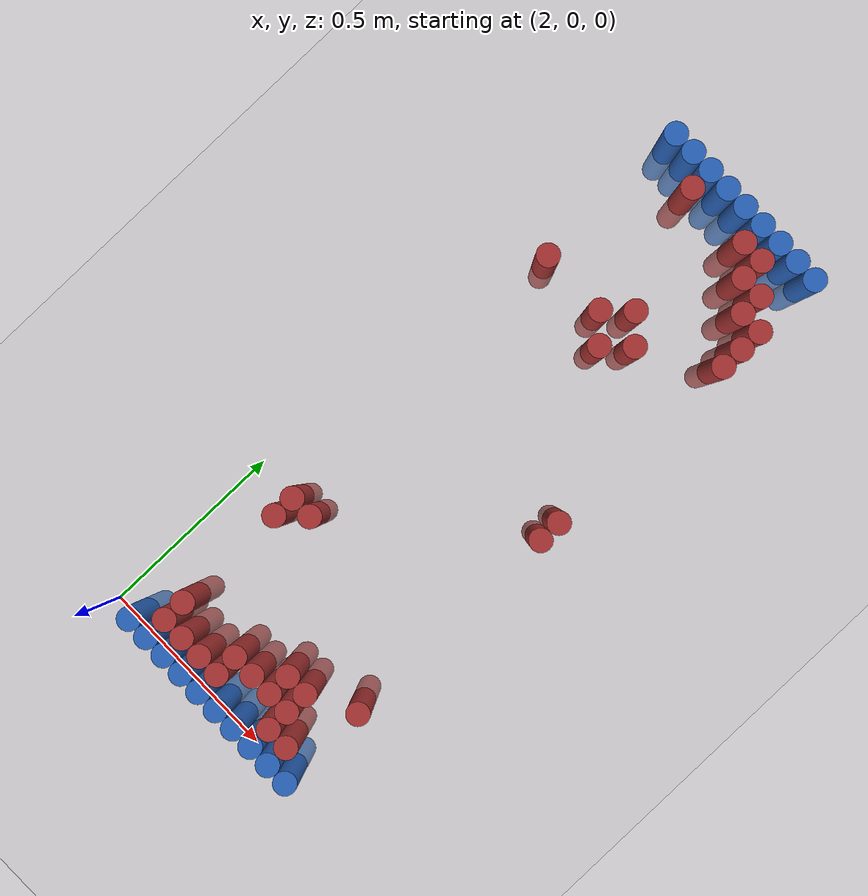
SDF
<sdf version="1.6">
 <world name="default">
  <model name="ground_plane">
   <static>1</static>
   <link name="link">
    <collision name="collision">
     <geometry><plane><normal>0 0 1</normal><size>100 100</size></plane></geometry>
     <surface><friction><ode><mu>100</mu><mu2>50</mu2></ode></friction></surface>
    </collision>
    <visual name="visual">
     <cast_shadows>0</cast_shadows>
     <geometry><plane><normal>0 0 1</normal><size>100 100</size></plane></geometry>
     <material>
      <script><uri>file://media/materials/scripts/gazebo.material</uri><name>Gazebo/Grey</name></script>
     </material>
    </visual>
   </link>
  </model>
  <model name="unit_cylinder_96">
   <static>1</static>
   <pose>2.130000 1.770000 0.000000 0.000000 0.000000 0.000000</pose>
   <link name="link">
    <inertial>
     <mass>1</mass>
     <inertia><ixx>0.145833</ixx><ixy>0</ixy><ixz>0</ixz><iyy>0.145833</iyy><iyz>0</iyz><izz>0.125</izz></inertia>
    </inertial>
    <collision name="collision">
     <geometry><cylinder><radius>0.030000</radius><length>0.5</length></cylinder></geometry>
    </collision>
    <visual name="visual">
     <geometry><cylinder><radius>0.030000</radius><length>0.5</length></cylinder></geometry>
     <material>
      <ambient>0.152000 0.379000 0.720000 1</ambient>
      <diffuse>0.152000 0.379000 0.720000 1</diffuse>
     </material>
     <material>
      <script><name>Gazebo/Grey</name><uri>file://media/materials/scripts/gazebo.material</uri></script>
     </material>
    </visual>
   </link>
  </model>
  <model name="unit_cylinder_97">
   <static>1</static>
   <pose>2.190000 1.770000 0.000000 0.000000 0.000000 0.000000</pose>
   <link name="link">
    <inertial>
     <mass>1</mass>
     <inertia><ixx>0.145833</ixx><ixy>0</ixy><ixz>0</ixz><iyy>0.145833</iyy><iyz>0</iyz><izz>0.125</izz></inertia>
    </inertial>
    <collision name="collision">
     <geometry><cylinder><radius>0.030000</radius><length>0.5</length></cylinder></geometry>
    </collision>
    <visual name="visual">
     <geometry><cylinder><radius>0.030000</radius><length>0.5</length></cylinder></geometry>
     <material>
      <ambient>0.152000 0.379000 0.720000 1</ambient>
      <diffuse>0.152000 0.379000 0.720000 1</diffuse>
     </material>
     <material>
      <script><name>Gazebo/Grey</name><uri>file://media/materials/scripts/gazebo.material</uri></script>
     </material>
    </visual>
   </link>
  </model>
  <model name="unit_cylinder_98">
   <static>1</static>
   <pose>2.250000 1.770000 0.000000 0.000000 0.000000 0.000000</pose>
   <link name="link">
    <inertial>
     <mass>1</mass>
     <inertia><ixx>0.145833</ixx><ixy>0</ixy><ixz>0</ixz><iyy>0.145833</iyy><iyz>0</iyz><izz>0.125</izz></inertia>
    </inertial>
    <collision name="collision">
     <geometry><cylinder><radius>0.030000</radius><length>0.5</length></cylinder></geometry>
    </collision>
    <visual name="visual">
     <geometry><cylinder><radius>0.030000</radius><length>0.5</length></cylinder></geometry>
     <material>
      <ambient>0.152000 0.379000 0.720000 1</ambient>
      <diffuse>0.152000 0.379000 0.720000 1</diffuse>
     </material>
     <material>
      <script><name>Gazebo/Grey</name><uri>file://media/materials/scripts/gazebo.material</uri></script>
     </material>
    </visual>
   </link>
  </model>
  <model name="unit_cylinder_99">
   <static>1</static>
   <pose>2.310000 1.770000 0.000000 0.000000 0.000000 0.000000</pose>
   <link name="link">
    <inertial>
     <mass>1</mass>
     <inertia><ixx>0.145833</ixx><ixy>0</ixy><ixz>0</ixz><iyy>0.145833</iyy><iyz>0</iyz><izz>0.125</izz></inertia>
    </inertial>
    <collision name="collision">
     <geometry><cylinder><radius>0.030000</radius><length>0.5</length></cylinder></geometry>
    </collision>
    <visual name="visual">
     <geometry><cylinder><radius>0.030000</radius><length>0.5</length></cylinder></geometry>
     <material>
      <ambient>0.152000 0.379000 0.720000 1</ambient>
      <diffuse>0.152000 0.379000 0.720000 1</diffuse>
     </material>
     <material>
      <script><name>Gazebo/Grey</name><uri>file://media/materials/scripts/gazebo.material</uri></script>
     </material>
    </visual>
   </link>
  </model>
  <model name="unit_cylinder_100">
   <static>1</static>
   <pose>2.370000 1.770000 0.000000 0.000000 0.000000 0.000000</pose>
   <link name="link">
    <inertial>
     <mass>1</mass>
     <inertia><ixx>0.145833</ixx><ixy>0</ixy><ixz>0</ixz><iyy>0.145833</iyy><iyz>0</iyz><izz>0.125</izz></inertia>
    </inertial>
    <collision name="collision">
     <geometry><cylinder><radius>0.030000</radius><length>0.5</length></cylinder></geometry>
    </collision>
    <visual name="visual">
     <geometry><cylinder><radius>0.030000</radius><length>0.5</length></cylinder></geometry>
     <material>
      <ambient>0.152000 0.379000 0.720000 1</ambient>
      <diffuse>0.152000 0.379000 0.720000 1</diffuse>
     </material>
     <material>
      <script><name>Gazebo/Grey</name><uri>file://media/materials/scripts/gazebo.material</uri></script>
     </material>
    </visual>
   </link>
  </model>
  <model name="unit_cylinder_101">
   <static>1</static>
   <pose>2.430000 1.770000 0.000000 0.000000 0.000000 0.000000</pose>
   <link name="link">
    <inertial>
     <mass>1</mass>
     <inertia><ixx>0.145833</ixx><ixy>0</ixy><ixz>0</ixz><iyy>0.145833</iyy><iyz>0</iyz><izz>0.125</izz></inertia>
    </inertial>
    <collision name="collision">
     <geometry><cylinder><radius>0.030000</radius><length>0.5</length></cylinder></geometry>
    </collision>
    <visual name="visual">
     <geometry><cylinder><radius>0.030000</radius><length>0.5</length></cylinder></geometry>
     <material>
      <ambient>0.152000 0.379000 0.720000 1</ambient>
      <diffuse>0.152000 0.379000 0.720000 1</diffuse>
     </material>
     <material>
      <script><name>Gazebo/Grey</name><uri>file://media/materials/scripts/gazebo.material</uri></script>
     </material>
    </visual>
   </link>
  </model>
  <model name="unit_cylinder_102">
   <static>1</static>
   <pose>2.490000 1.770000 0.000000 0.000000 0.000000 0.000000</pose>
   <link name="link">
    <inertial>
     <mass>1</mass>
     <inertia><ixx>0.145833</ixx><ixy>0</ixy><ixz>0</ixz><iyy>0.145833</iyy><iyz>0</iyz><izz>0.125</izz></inertia>
    </inertial>
    <collision name="collision">
     <geometry><cylinder><radius>0.030000</radius><length>0.5</length></cylinder></geometry>
    </collision>
    <visual name="visual">
     <geometry><cylinder><radius>0.030000</radius><length>0.5</length></cylinder></geometry>
     <material>
      <ambient>0.152000 0.379000 0.720000 1</ambient>
      <diffuse>0.152000 0.379000 0.720000 1</diffuse>
     </material>
     <material>
      <script><name>Gazebo/Grey</name><uri>file://media/materials/scripts/gazebo.material</uri></script>
     </material>
    </visual>
   </link>
  </model>
  <model name="unit_cylinder_103">
   <static>1</static>
   <pose>2.550000 1.770000 0.000000 0.000000 0.000000 0.000000</pose>
   <link name="link">
    <inertial>
     <mass>1</mass>
     <inertia><ixx>0.145833</ixx><ixy>0</ixy><ixz>0</ixz><iyy>0.145833</iyy><iyz>0</iyz><izz>0.125</izz></inertia>
    </inertial>
    <collision name="collision">
     <geometry><cylinder><radius>0.030000</radius><length>0.5</length></cylinder></geometry>
    </collision>
    <visual name="visual">
     <geometry><cylinder><radius>0.030000</radius><length>0.5</length></cylinder></geometry>
     <material>
      <ambient>0.152000 0.379000 0.720000 1</ambient>
      <diffuse>0.152000 0.379000 0.720000 1</diffuse>
     </material>
     <material>
      <script><name>Gazebo/Grey</name><uri>file://media/materials/scripts/gazebo.material</uri></script>
     </material>
    </visual>
   </link>
  </model>
  <model name="unit_cylinder_104">
   <static>1</static>
   <pose>2.610000 1.770000 0.000000 0.000000 0.000000 0.000000</pose>
   <link name="link">
    <inertial>
     <mass>1</mass>
     <inertia><ixx>0.145833</ixx><ixy>0</ixy><ixz>0</ixz><iyy>0.145833</iyy><iyz>0</iyz><izz>0.125</izz></inertia>
    </inertial>
    <collision name="collision">
     <geometry><cylinder><radius>0.030000</radius><length>0.5</length></cylinder></geometry>
    </collision>
    <visual name="visual">
     <geometry><cylinder><radius>0.030000</radius><length>0.5</length></cylinder></geometry>
     <material>
      <ambient>0.152000 0.379000 0.720000 1</ambient>
      <diffuse>0.152000 0.379000 0.720000 1</diffuse>
     </material>
     <material>
      <script><name>Gazebo/Grey</name><uri>file://media/materials/scripts/gazebo.material</uri></script>
     </material>
    </visual>
   </link>
  </model>
  <model name="unit_cylinder_126">
   <static>1</static>
   <pose>2.250000 1.710000 0.000000 0.000000 0.000000 0.000000</pose>
   <link name="link">
    <inertial>
     <mass>1</mass>
     <inertia><ixx>0.145833</ixx><ixy>0</ixy><ixz>0</ixz><iyy>0.145833</iyy><iyz>0</iyz><izz>0.125</izz></inertia>
    </inertial>
    <collision name="collision">
     <geometry><cylinder><radius>0.030000</radius><length>0.5</length></cylinder></geometry>
    </collision>
    <visual name="visual">
     <geometry><cylinder><radius>0.030000</radius><length>0.5</length></cylinder></geometry>
     <material>
      <ambient>0.648000 0.192000 0.192000 1</ambient>
      <diffuse>0.648000 0.192000 0.192000 1</diffuse>
     </material>
     <material>
      <script><name>Gazebo/Grey</name><uri>file://media/materials/scripts/gazebo.material</uri></script>
     </material>
    </visual>
   </link>
  </model>
  <model name="unit_cylinder_127">
   <static>1</static>
   <pose>2.430000 1.710000 0.000000 0.000000 0.000000 0.000000</pose>
   <link name="link">
    <inertial>
     <mass>1</mass>
     <inertia><ixx>0.145833</ixx><ixy>0</ixy><ixz>0</ixz><iyy>0.145833</iyy><iyz>0</iyz><izz>0.125</izz></inertia>
    </inertial>
    <collision name="collision">
     <geometry><cylinder><radius>0.030000</radius><length>0.5</length></cylinder></geometry>
    </collision>
    <visual name="visual">
     <geometry><cylinder><radius>0.030000</radius><length>0.5</length></cylinder></geometry>
     <material>
      <ambient>0.648000 0.192000 0.192000 1</ambient>
      <diffuse>0.648000 0.192000 0.192000 1</diffuse>
     </material>
     <material>
      <script><name>Gazebo/Grey</name><uri>file://media/materials/scripts/gazebo.material</uri></script>
     </material>
    </visual>
   </link>
  </model>
  <model name="unit_cylinder_128">
   <static>1</static>
   <pose>2.490000 1.710000 0.000000 0.000000 0.000000 0.000000</pose>
   <link name="link">
    <inertial>
     <mass>1</mass>
     <inertia><ixx>0.145833</ixx><ixy>0</ixy><ixz>0</ixz><iyy>0.145833</iyy><iyz>0</iyz><izz>0.125</izz></inertia>
    </inertial>
    <collision name="collision">
     <geometry><cylinder><radius>0.030000</radius><length>0.5</length></cylinder></geometry>
    </collision>
    <visual name="visual">
     <geometry><cylinder><radius>0.030000</radius><length>0.5</length></cylinder></geometry>
     <material>
      <ambient>0.648000 0.192000 0.192000 1</ambient>
      <diffuse>0.648000 0.192000 0.192000 1</diffuse>
     </material>
     <material>
      <script><name>Gazebo/Grey</name><uri>file://media/materials/scripts/gazebo.material</uri></script>
     </material>
    </visual>
   </link>
  </model>
  <model name="unit_cylinder_136">
   <static>1</static>
   <pose>2.490000 1.650000 0.000000 0.000000 0.000000 0.000000</pose>
   <link name="link">
    <inertial>
     <mass>1</mass>
     <inertia><ixx>0.145833</ixx><ixy>0</ixy><ixz>0</ixz><iyy>0.145833</iyy><iyz>0</iyz><izz>0.125</izz></inertia>
    </inertial>
    <collision name="collision">
     <geometry><cylinder><radius>0.030000</radius><length>0.5</length></cylinder></geometry>
    </collision>
    <visual name="visual">
     <geometry><cylinder><radius>0.030000</radius><length>0.5</length></cylinder></geometry>
     <material>
      <ambient>0.648000 0.192000 0.192000 1</ambient>
      <diffuse>0.648000 0.192000 0.192000 1</diffuse>
     </material>
     <material>
      <script><name>Gazebo/Grey</name><uri>file://media/materials/scripts/gazebo.material</uri></script>
     </material>
    </visual>
   </link>
  </model>
  <model name="unit_cylinder_137">
   <static>1</static>
   <pose>2.550000 1.650000 0.000000 0.000000 0.000000 0.000000</pose>
   <link name="link">
    <inertial>
     <mass>1</mass>
     <inertia><ixx>0.145833</ixx><ixy>0</ixy><ixz>0</ixz><iyy>0.145833</iyy><iyz>0</iyz><izz>0.125</izz></inertia>
    </inertial>
    <collision name="collision">
     <geometry><cylinder><radius>0.030000</radius><length>0.5</length></cylinder></geometry>
    </collision>
    <visual name="visual">
     <geometry><cylinder><radius>0.030000</radius><length>0.5</length></cylinder></geometry>
     <material>
      <ambient>0.648000 0.192000 0.192000 1</ambient>
      <diffuse>0.648000 0.192000 0.192000 1</diffuse>
     </material>
     <material>
      <script><name>Gazebo/Grey</name><uri>file://media/materials/scripts/gazebo.material</uri></script>
     </material>
    </visual>
   </link>
  </model>
  <model name="unit_cylinder_141">
   <static>1</static>
   <pose>2.550000 1.590000 0.000000 0.000000 0.000000 0.000000</pose>
   <link name="link">
    <inertial>
     <mass>1</mass>
     <inertia><ixx>0.145833</ixx><ixy>0</ixy><ixz>0</ixz><iyy>0.145833</iyy><iyz>0</iyz><izz>0.125</izz></inertia>
    </inertial>
    <collision name="collision">
     <geometry><cylinder><radius>0.030000</radius><length>0.5</length></cylinder></geometry>
    </collision>
    <visual name="visual">
     <geometry><cylinder><radius>0.030000</radius><length>0.5</length></cylinder></geometry>
     <material>
      <ambient>0.648000 0.192000 0.192000 1</ambient>
      <diffuse>0.648000 0.192000 0.192000 1</diffuse>
     </material>
     <material>
      <script><name>Gazebo/Grey</name><uri>file://media/materials/scripts/gazebo.material</uri></script>
     </material>
    </visual>
   </link>
  </model>
  <model name="unit_cylinder_142">
   <static>1</static>
   <pose>2.610000 1.590000 0.000000 0.000000 0.000000 0.000000</pose>
   <link name="link">
    <inertial>
     <mass>1</mass>
     <inertia><ixx>0.145833</ixx><ixy>0</ixy><ixz>0</ixz><iyy>0.145833</iyy><iyz>0</iyz><izz>0.125</izz></inertia>
    </inertial>
    <collision name="collision">
     <geometry><cylinder><radius>0.030000</radius><length>0.5</length></cylinder></geometry>
    </collision>
    <visual name="visual">
     <geometry><cylinder><radius>0.030000</radius><length>0.5</length></cylinder></geometry>
     <material>
      <ambient>0.648000 0.192000 0.192000 1</ambient>
      <diffuse>0.648000 0.192000 0.192000 1</diffuse>
     </material>
     <material>
      <script><name>Gazebo/Grey</name><uri>file://media/materials/scripts/gazebo.material</uri></script>
     </material>
    </visual>
   </link>
  </model>
  <model name="unit_cylinder_147">
   <static>1</static>
   <pose>2.610000 1.530000 0.000000 0.000000 0.000000 0.000000</pose>
   <link name="link">
    <inertial>
     <mass>1</mass>
     <inertia><ixx>0.145833</ixx><ixy>0</ixy><ixz>0</ixz><iyy>0.145833</iyy><iyz>0</iyz><izz>0.125</izz></inertia>
    </inertial>
    <collision name="collision">
     <geometry><cylinder><radius>0.030000</radius><length>0.5</length></cylinder></geometry>
    </collision>
    <visual name="visual">
     <geometry><cylinder><radius>0.030000</radius><length>0.5</length></cylinder></geometry>
     <material>
      <ambient>0.648000 0.192000 0.192000 1</ambient>
      <diffuse>0.648000 0.192000 0.192000 1</diffuse>
     </material>
     <material>
      <script><name>Gazebo/Grey</name><uri>file://media/materials/scripts/gazebo.material</uri></script>
     </material>
    </visual>
   </link>
  </model>
  <model name="unit_cylinder_155">
   <static>1</static>
   <pose>2.610000 1.470000 0.000000 0.000000 0.000000 0.000000</pose>
   <link name="link">
    <inertial>
     <mass>1</mass>
     <inertia><ixx>0.145833</ixx><ixy>0</ixy><ixz>0</ixz><iyy>0.145833</iyy><iyz>0</iyz><izz>0.125</izz></inertia>
    </inertial>
    <collision name="collision">
     <geometry><cylinder><radius>0.030000</radius><length>0.5</length></cylinder></geometry>
    </collision>
    <visual name="visual">
     <geometry><cylinder><radius>0.030000</radius><length>0.5</length></cylinder></geometry>
     <material>
      <ambient>0.648000 0.192000 0.192000 1</ambient>
      <diffuse>0.648000 0.192000 0.192000 1</diffuse>
     </material>
     <material>
      <script><name>Gazebo/Grey</name><uri>file://media/materials/scripts/gazebo.material</uri></script>
     </material>
    </visual>
   </link>
  </model>
  <model name="unit_cylinder_162">
   <static>1</static>
   <pose>2.370000 1.410000 0.000000 0.000000 0.000000 0.000000</pose>
   <link name="link">
    <inertial>
     <mass>1</mass>
     <inertia><ixx>0.145833</ixx><ixy>0</ixy><ixz>0</ixz><iyy>0.145833</iyy><iyz>0</iyz><izz>0.125</izz></inertia>
    </inertial>
    <collision name="collision">
     <geometry><cylinder><radius>0.030000</radius><length>0.5</length></cylinder></geometry>
    </collision>
    <visual name="visual">
     <geometry><cylinder><radius>0.030000</radius><length>0.5</length></cylinder></geometry>
     <material>
      <ambient>0.648000 0.192000 0.192000 1</ambient>
      <diffuse>0.648000 0.192000 0.192000 1</diffuse>
     </material>
     <material>
      <script><name>Gazebo/Grey</name><uri>file://media/materials/scripts/gazebo.material</uri></script>
     </material>
    </visual>
   </link>
  </model>
  <model name="unit_cylinder_167">
   <static>1</static>
   <pose>2.130000 1.350000 0.000000 0.000000 0.000000 0.000000</pose>
   <link name="link">
    <inertial>
     <mass>1</mass>
     <inertia><ixx>0.145833</ixx><ixy>0</ixy><ixz>0</ixz><iyy>0.145833</iyy><iyz>0</iyz><izz>0.125</izz></inertia>
    </inertial>
    <collision name="collision">
     <geometry><cylinder><radius>0.030000</radius><length>0.5</length></cylinder></geometry>
    </collision>
    <visual name="visual">
     <geometry><cylinder><radius>0.030000</radius><length>0.5</length></cylinder></geometry>
     <material>
      <ambient>0.648000 0.192000 0.192000 1</ambient>
      <diffuse>0.648000 0.192000 0.192000 1</diffuse>
     </material>
     <material>
      <script><name>Gazebo/Grey</name><uri>file://media/materials/scripts/gazebo.material</uri></script>
     </material>
    </visual>
   </link>
  </model>
  <model name="unit_cylinder_168">
   <static>1</static>
   <pose>2.310000 1.350000 0.000000 0.000000 0.000000 0.000000</pose>
   <link name="link">
    <inertial>
     <mass>1</mass>
     <inertia><ixx>0.145833</ixx><ixy>0</ixy><ixz>0</ixz><iyy>0.145833</iyy><iyz>0</iyz><izz>0.125</izz></inertia>
    </inertial>
    <collision name="collision">
     <geometry><cylinder><radius>0.030000</radius><length>0.5</length></cylinder></geometry>
    </collision>
    <visual name="visual">
     <geometry><cylinder><radius>0.030000</radius><length>0.5</length></cylinder></geometry>
     <material>
      <ambient>0.648000 0.192000 0.192000 1</ambient>
      <diffuse>0.648000 0.192000 0.192000 1</diffuse>
     </material>
     <material>
      <script><name>Gazebo/Grey</name><uri>file://media/materials/scripts/gazebo.material</uri></script>
     </material>
    </visual>
   </link>
  </model>
  <model name="unit_cylinder_169">
   <static>1</static>
   <pose>2.430000 1.350000 0.000000 0.000000 0.000000 0.000000</pose>
   <link name="link">
    <inertial>
     <mass>1</mass>
     <inertia><ixx>0.145833</ixx><ixy>0</ixy><ixz>0</ixz><iyy>0.145833</iyy><iyz>0</iyz><izz>0.125</izz></inertia>
    </inertial>
    <collision name="collision">
     <geometry><cylinder><radius>0.030000</radius><length>0.5</length></cylinder></geometry>
    </collision>
    <visual name="visual">
     <geometry><cylinder><radius>0.030000</radius><length>0.5</length></cylinder></geometry>
     <material>
      <ambient>0.648000 0.192000 0.192000 1</ambient>
      <diffuse>0.648000 0.192000 0.192000 1</diffuse>
     </material>
     <material>
      <script><name>Gazebo/Grey</name><uri>file://media/materials/scripts/gazebo.material</uri></script>
     </material>
    </visual>
   </link>
  </model>
  <model name="unit_cylinder_172">
   <static>1</static>
   <pose>2.370000 1.290000 0.000000 0.000000 0.000000 0.000000</pose>
   <link name="link">
    <inertial>
     <mass>1</mass>
     <inertia><ixx>0.145833</ixx><ixy>0</ixy><ixz>0</ixz><iyy>0.145833</iyy><iyz>0</iyz><izz>0.125</izz></inertia>
    </inertial>
    <collision name="collision">
     <geometry><cylinder><radius>0.030000</radius><length>0.5</length></cylinder></geometry>
    </collision>
    <visual name="visual">
     <geometry><cylinder><radius>0.030000</radius><length>0.5</length></cylinder></geometry>
     <material>
      <ambient>0.648000 0.192000 0.192000 1</ambient>
      <diffuse>0.648000 0.192000 0.192000 1</diffuse>
     </material>
     <material>
      <script><name>Gazebo/Grey</name><uri>file://media/materials/scripts/gazebo.material</uri></script>
     </material>
    </visual>
   </link>
  </model>
  <model name="unit_cylinder_194">
   <static>1</static>
   <pose>2.610000 0.930000 0.000000 0.000000 0.000000 0.000000</pose>
   <link name="link">
    <inertial>
     <mass>1</mass>
     <inertia><ixx>0.145833</ixx><ixy>0</ixy><ixz>0</ixz><iyy>0.145833</iyy><iyz>0</iyz><izz>0.125</izz></inertia>
    </inertial>
    <collision name="collision">
     <geometry><cylinder><radius>0.030000</radius><length>0.5</length></cylinder></geometry>
    </collision>
    <visual name="visual">
     <geometry><cylinder><radius>0.030000</radius><length>0.5</length></cylinder></geometry>
     <material>
      <ambient>0.648000 0.192000 0.192000 1</ambient>
      <diffuse>0.648000 0.192000 0.192000 1</diffuse>
     </material>
     <material>
      <script><name>Gazebo/Grey</name><uri>file://media/materials/scripts/gazebo.material</uri></script>
     </material>
    </visual>
   </link>
  </model>
  <model name="unit_cylinder_203">
   <static>1</static>
   <pose>2.610000 0.870000 0.000000 0.000000 0.000000 0.000000</pose>
   <link name="link">
    <inertial>
     <mass>1</mass>
     <inertia><ixx>0.145833</ixx><ixy>0</ixy><ixz>0</ixz><iyy>0.145833</iyy><iyz>0</iyz><izz>0.125</izz></inertia>
    </inertial>
    <collision name="collision">
     <geometry><cylinder><radius>0.030000</radius><length>0.5</length></cylinder></geometry>
    </collision>
    <visual name="visual">
     <geometry><cylinder><radius>0.030000</radius><length>0.5</length></cylinder></geometry>
     <material>
      <ambient>0.648000 0.192000 0.192000 1</ambient>
      <diffuse>0.648000 0.192000 0.192000 1</diffuse>
     </material>
     <material>
      <script><name>Gazebo/Grey</name><uri>file://media/materials/scripts/gazebo.material</uri></script>
     </material>
    </visual>
   </link>
  </model>
  <model name="unit_cylinder_233">
   <static>1</static>
   <pose>2.130000 0.510000 0.000000 0.000000 0.000000 0.000000</pose>
   <link name="link">
    <inertial>
     <mass>1</mass>
     <inertia><ixx>0.145833</ixx><ixy>0</ixy><ixz>0</ixz><iyy>0.145833</iyy><iyz>0</iyz><izz>0.125</izz></inertia>
    </inertial>
    <collision name="collision">
     <geometry><cylinder><radius>0.030000</radius><length>0.5</length></cylinder></geometry>
    </collision>
    <visual name="visual">
     <geometry><cylinder><radius>0.030000</radius><length>0.5</length></cylinder></geometry>
     <material>
      <ambient>0.648000 0.192000 0.192000 1</ambient>
      <diffuse>0.648000 0.192000 0.192000 1</diffuse>
     </material>
     <material>
      <script><name>Gazebo/Grey</name><uri>file://media/materials/scripts/gazebo.material</uri></script>
     </material>
    </visual>
   </link>
  </model>
  <model name="unit_cylinder_234">
   <static>1</static>
   <pose>2.190000 0.510000 0.000000 0.000000 0.000000 0.000000</pose>
   <link name="link">
    <inertial>
     <mass>1</mass>
     <inertia><ixx>0.145833</ixx><ixy>0</ixy><ixz>0</ixz><iyy>0.145833</iyy><iyz>0</iyz><izz>0.125</izz></inertia>
    </inertial>
    <collision name="collision">
     <geometry><cylinder><radius>0.030000</radius><length>0.5</length></cylinder></geometry>
    </collision>
    <visual name="visual">
     <geometry><cylinder><radius>0.030000</radius><length>0.5</length></cylinder></geometry>
     <material>
      <ambient>0.648000 0.192000 0.192000 1</ambient>
      <diffuse>0.648000 0.192000 0.192000 1</diffuse>
     </material>
     <material>
      <script><name>Gazebo/Grey</name><uri>file://media/materials/scripts/gazebo.material</uri></script>
     </material>
    </visual>
   </link>
  </model>
  <model name="unit_cylinder_235">
   <static>1</static>
   <pose>2.130000 0.450000 0.000000 0.000000 0.000000 0.000000</pose>
   <link name="link">
    <inertial>
     <mass>1</mass>
     <inertia><ixx>0.145833</ixx><ixy>0</ixy><ixz>0</ixz><iyy>0.145833</iyy><iyz>0</iyz><izz>0.125</izz></inertia>
    </inertial>
    <collision name="collision">
     <geometry><cylinder><radius>0.030000</radius><length>0.5</length></cylinder></geometry>
    </collision>
    <visual name="visual">
     <geometry><cylinder><radius>0.030000</radius><length>0.5</length></cylinder></geometry>
     <material>
      <ambient>0.648000 0.192000 0.192000 1</ambient>
      <diffuse>0.648000 0.192000 0.192000 1</diffuse>
     </material>
     <material>
      <script><name>Gazebo/Grey</name><uri>file://media/materials/scripts/gazebo.material</uri></script>
     </material>
    </visual>
   </link>
  </model>
  <model name="unit_cylinder_240">
   <static>1</static>
   <pose>2.610000 0.270000 0.000000 0.000000 0.000000 0.000000</pose>
   <link name="link">
    <inertial>
     <mass>1</mass>
     <inertia><ixx>0.145833</ixx><ixy>0</ixy><ixz>0</ixz><iyy>0.145833</iyy><iyz>0</iyz><izz>0.125</izz></inertia>
    </inertial>
    <collision name="collision">
     <geometry><cylinder><radius>0.030000</radius><length>0.5</length></cylinder></geometry>
    </collision>
    <visual name="visual">
     <geometry><cylinder><radius>0.030000</radius><length>0.5</length></cylinder></geometry>
     <material>
      <ambient>0.648000 0.192000 0.192000 1</ambient>
      <diffuse>0.648000 0.192000 0.192000 1</diffuse>
     </material>
     <material>
      <script><name>Gazebo/Grey</name><uri>file://media/materials/scripts/gazebo.material</uri></script>
     </material>
    </visual>
   </link>
  </model>
  <model name="unit_cylinder_249">
   <static>1</static>
   <pose>2.430000 0.210000 0.000000 0.000000 0.000000 0.000000</pose>
   <link name="link">
    <inertial>
     <mass>1</mass>
     <inertia><ixx>0.145833</ixx><ixy>0</ixy><ixz>0</ixz><iyy>0.145833</iyy><iyz>0</iyz><izz>0.125</izz></inertia>
    </inertial>
    <collision name="collision">
     <geometry><cylinder><radius>0.030000</radius><length>0.5</length></cylinder></geometry>
    </collision>
    <visual name="visual">
     <geometry><cylinder><radius>0.030000</radius><length>0.5</length></cylinder></geometry>
     <material>
      <ambient>0.648000 0.192000 0.192000 1</ambient>
      <diffuse>0.648000 0.192000 0.192000 1</diffuse>
     </material>
     <material>
      <script><name>Gazebo/Grey</name><uri>file://media/materials/scripts/gazebo.material</uri></script>
     </material>
    </visual>
   </link>
  </model>
  <model name="unit_cylinder_250">
   <static>1</static>
   <pose>2.490000 0.210000 0.000000 0.000000 0.000000 0.000000</pose>
   <link name="link">
    <inertial>
     <mass>1</mass>
     <inertia><ixx>0.145833</ixx><ixy>0</ixy><ixz>0</ixz><iyy>0.145833</iyy><iyz>0</iyz><izz>0.125</izz></inertia>
    </inertial>
    <collision name="collision">
     <geometry><cylinder><radius>0.030000</radius><length>0.5</length></cylinder></geometry>
    </collision>
    <visual name="visual">
     <geometry><cylinder><radius>0.030000</radius><length>0.5</length></cylinder></geometry>
     <material>
      <ambient>0.648000 0.192000 0.192000 1</ambient>
      <diffuse>0.648000 0.192000 0.192000 1</diffuse>
     </material>
     <material>
      <script><name>Gazebo/Grey</name><uri>file://media/materials/scripts/gazebo.material</uri></script>
     </material>
    </visual>
   </link>
  </model>
  <model name="unit_cylinder_255">
   <static>1</static>
   <pose>2.130000 0.150000 0.000000 0.000000 0.000000 0.000000</pose>
   <link name="link">
    <inertial>
     <mass>1</mass>
     <inertia><ixx>0.145833</ixx><ixy>0</ixy><ixz>0</ixz><iyy>0.145833</iyy><iyz>0</iyz><izz>0.125</izz></inertia>
    </inertial>
    <collision name="collision">
     <geometry><cylinder><radius>0.030000</radius><length>0.5</length></cylinder></geometry>
    </collision>
    <visual name="visual">
     <geometry><cylinder><radius>0.030000</radius><length>0.5</length></cylinder></geometry>
     <material>
      <ambient>0.648000 0.192000 0.192000 1</ambient>
      <diffuse>0.648000 0.192000 0.192000 1</diffuse>
     </material>
     <material>
      <script><name>Gazebo/Grey</name><uri>file://media/materials/scripts/gazebo.material</uri></script>
     </material>
    </visual>
   </link>
  </model>
  <model name="unit_cylinder_256">
   <static>1</static>
   <pose>2.310000 0.150000 0.000000 0.000000 0.000000 0.000000</pose>
   <link name="link">
    <inertial>
     <mass>1</mass>
     <inertia><ixx>0.145833</ixx><ixy>0</ixy><ixz>0</ixz><iyy>0.145833</iyy><iyz>0</iyz><izz>0.125</izz></inertia>
    </inertial>
    <collision name="collision">
     <geometry><cylinder><radius>0.030000</radius><length>0.5</length></cylinder></geometry>
    </collision>
    <visual name="visual">
     <geometry><cylinder><radius>0.030000</radius><length>0.5</length></cylinder></geometry>
     <material>
      <ambient>0.648000 0.192000 0.192000 1</ambient>
      <diffuse>0.648000 0.192000 0.192000 1</diffuse>
     </material>
     <material>
      <script><name>Gazebo/Grey</name><uri>file://media/materials/scripts/gazebo.material</uri></script>
     </material>
    </visual>
   </link>
  </model>
  <model name="unit_cylinder_257">
   <static>1</static>
   <pose>2.370000 0.150000 0.000000 0.000000 0.000000 0.000000</pose>
   <link name="link">
    <inertial>
     <mass>1</mass>
     <inertia><ixx>0.145833</ixx><ixy>0</ixy><ixz>0</ixz><iyy>0.145833</iyy><iyz>0</iyz><izz>0.125</izz></inertia>
    </inertial>
    <collision name="collision">
     <geometry><cylinder><radius>0.030000</radius><length>0.5</length></cylinder></geometry>
    </collision>
    <visual name="visual">
     <geometry><cylinder><radius>0.030000</radius><length>0.5</length></cylinder></geometry>
     <material>
      <ambient>0.648000 0.192000 0.192000 1</ambient>
      <diffuse>0.648000 0.192000 0.192000 1</diffuse>
     </material>
     <material>
      <script><name>Gazebo/Grey</name><uri>file://media/materials/scripts/gazebo.material</uri></script>
     </material>
    </visual>
   </link>
  </model>
  <model name="unit_cylinder_258">
   <static>1</static>
   <pose>2.430000 0.150000 0.000000 0.000000 0.000000 0.000000</pose>
   <link name="link">
    <inertial>
     <mass>1</mass>
     <inertia><ixx>0.145833</ixx><ixy>0</ixy><ixz>0</ixz><iyy>0.145833</iyy><iyz>0</iyz><izz>0.125</izz></inertia>
    </inertial>
    <collision name="collision">
     <geometry><cylinder><radius>0.030000</radius><length>0.5</length></cylinder></geometry>
    </collision>
    <visual name="visual">
     <geometry><cylinder><radius>0.030000</radius><length>0.5</length></cylinder></geometry>
     <material>
      <ambient>0.648000 0.192000 0.192000 1</ambient>
      <diffuse>0.648000 0.192000 0.192000 1</diffuse>
     </material>
     <material>
      <script><name>Gazebo/Grey</name><uri>file://media/materials/scripts/gazebo.material</uri></script>
     </material>
    </visual>
   </link>
  </model>
  <model name="unit_cylinder_259">
   <static>1</static>
   <pose>2.490000 0.150000 0.000000 0.000000 0.000000 0.000000</pose>
   <link name="link">
    <inertial>
     <mass>1</mass>
     <inertia><ixx>0.145833</ixx><ixy>0</ixy><ixz>0</ixz><iyy>0.145833</iyy><iyz>0</iyz><izz>0.125</izz></inertia>
    </inertial>
    <collision name="collision">
     <geometry><cylinder><radius>0.030000</radius><length>0.5</length></cylinder></geometry>
    </collision>
    <visual name="visual">
     <geometry><cylinder><radius>0.030000</radius><length>0.5</length></cylinder></geometry>
     <material>
      <ambient>0.648000 0.192000 0.192000 1</ambient>
      <diffuse>0.648000 0.192000 0.192000 1</diffuse>
     </material>
     <material>
      <script><name>Gazebo/Grey</name><uri>file://media/materials/scripts/gazebo.material</uri></script>
     </material>
    </visual>
   </link>
  </model>
  <model name="unit_cylinder_264">
   <static>1</static>
   <pose>2.130000 0.090000 0.000000 0.000000 0.000000 0.000000</pose>
   <link name="link">
    <inertial>
     <mass>1</mass>
     <inertia><ixx>0.145833</ixx><ixy>0</ixy><ixz>0</ixz><iyy>0.145833</iyy><iyz>0</iyz><izz>0.125</izz></inertia>
    </inertial>
    <collision name="collision">
     <geometry><cylinder><radius>0.030000</radius><length>0.5</length></cylinder></geometry>
    </collision>
    <visual name="visual">
     <geometry><cylinder><radius>0.030000</radius><length>0.5</length></cylinder></geometry>
     <material>
      <ambient>0.648000 0.192000 0.192000 1</ambient>
      <diffuse>0.648000 0.192000 0.192000 1</diffuse>
     </material>
     <material>
      <script><name>Gazebo/Grey</name><uri>file://media/materials/scripts/gazebo.material</uri></script>
     </material>
    </visual>
   </link>
  </model>
  <model name="unit_cylinder_265">
   <static>1</static>
   <pose>2.190000 0.090000 0.000000 0.000000 0.000000 0.000000</pose>
   <link name="link">
    <inertial>
     <mass>1</mass>
     <inertia><ixx>0.145833</ixx><ixy>0</ixy><ixz>0</ixz><iyy>0.145833</iyy><iyz>0</iyz><izz>0.125</izz></inertia>
    </inertial>
    <collision name="collision">
     <geometry><cylinder><radius>0.030000</radius><length>0.5</length></cylinder></geometry>
    </collision>
    <visual name="visual">
     <geometry><cylinder><radius>0.030000</radius><length>0.5</length></cylinder></geometry>
     <material>
      <ambient>0.648000 0.192000 0.192000 1</ambient>
      <diffuse>0.648000 0.192000 0.192000 1</diffuse>
     </material>
     <material>
      <script><name>Gazebo/Grey</name><uri>file://media/materials/scripts/gazebo.material</uri></script>
     </material>
    </visual>
   </link>
  </model>
  <model name="unit_cylinder_266">
   <static>1</static>
   <pose>2.250000 0.090000 0.000000 0.000000 0.000000 0.000000</pose>
   <link name="link">
    <inertial>
     <mass>1</mass>
     <inertia><ixx>0.145833</ixx><ixy>0</ixy><ixz>0</ixz><iyy>0.145833</iyy><iyz>0</iyz><izz>0.125</izz></inertia>
    </inertial>
    <collision name="collision">
     <geometry><cylinder><radius>0.030000</radius><length>0.5</length></cylinder></geometry>
    </collision>
    <visual name="visual">
     <geometry><cylinder><radius>0.030000</radius><length>0.5</length></cylinder></geometry>
     <material>
      <ambient>0.648000 0.192000 0.192000 1</ambient>
      <diffuse>0.648000 0.192000 0.192000 1</diffuse>
     </material>
     <material>
      <script><name>Gazebo/Grey</name><uri>file://media/materials/scripts/gazebo.material</uri></script>
     </material>
    </visual>
   </link>
  </model>
  <model name="unit_cylinder_267">
   <static>1</static>
   <pose>2.310000 0.090000 0.000000 0.000000 0.000000 0.000000</pose>
   <link name="link">
    <inertial>
     <mass>1</mass>
     <inertia><ixx>0.145833</ixx><ixy>0</ixy><ixz>0</ixz><iyy>0.145833</iyy><iyz>0</iyz><izz>0.125</izz></inertia>
    </inertial>
    <collision name="collision">
     <geometry><cylinder><radius>0.030000</radius><length>0.5</length></cylinder></geometry>
    </collision>
    <visual name="visual">
     <geometry><cylinder><radius>0.030000</radius><length>0.5</length></cylinder></geometry>
     <material>
      <ambient>0.648000 0.192000 0.192000 1</ambient>
      <diffuse>0.648000 0.192000 0.192000 1</diffuse>
     </material>
     <material>
      <script><name>Gazebo/Grey</name><uri>file://media/materials/scripts/gazebo.material</uri></script>
     </material>
    </visual>
   </link>
  </model>
  <model name="unit_cylinder_268">
   <static>1</static>
   <pose>2.490000 0.090000 0.000000 0.000000 0.000000 0.000000</pose>
   <link name="link">
    <inertial>
     <mass>1</mass>
     <inertia><ixx>0.145833</ixx><ixy>0</ixy><ixz>0</ixz><iyy>0.145833</iyy><iyz>0</iyz><izz>0.125</izz></inertia>
    </inertial>
    <collision name="collision">
     <geometry><cylinder><radius>0.030000</radius><length>0.5</length></cylinder></geometry>
    </collision>
    <visual name="visual">
     <geometry><cylinder><radius>0.030000</radius><length>0.5</length></cylinder></geometry>
     <material>
      <ambient>0.648000 0.192000 0.192000 1</ambient>
      <diffuse>0.648000 0.192000 0.192000 1</diffuse>
     </material>
     <material>
      <script><name>Gazebo/Grey</name><uri>file://media/materials/scripts/gazebo.material</uri></script>
     </material>
    </visual>
   </link>
  </model>
  <model name="unit_cylinder_269">
   <static>1</static>
   <pose>2.550000 0.090000 0.000000 0.000000 0.000000 0.000000</pose>
   <link name="link">
    <inertial>
     <mass>1</mass>
     <inertia><ixx>0.145833</ixx><ixy>0</ixy><ixz>0</ixz><iyy>0.145833</iyy><iyz>0</iyz><izz>0.125</izz></inertia>
    </inertial>
    <collision name="collision">
     <geometry><cylinder><radius>0.030000</radius><length>0.5</length></cylinder></geometry>
    </collision>
    <visual name="visual">
     <geometry><cylinder><radius>0.030000</radius><length>0.5</length></cylinder></geometry>
     <material>
      <ambient>0.648000 0.192000 0.192000 1</ambient>
      <diffuse>0.648000 0.192000 0.192000 1</diffuse>
     </material>
     <material>
      <script><name>Gazebo/Grey</name><uri>file://media/materials/scripts/gazebo.material</uri></script>
     </material>
    </visual>
   </link>
  </model>
  <model name="unit_cylinder_277">
   <static>1</static>
   <pose>2.070000 0.030000 0.000000 0.000000 0.000000 0.000000</pose>
   <link name="link">
    <inertial>
     <mass>1</mass>
     <inertia><ixx>0.145833</ixx><ixy>0</ixy><ixz>0</ixz><iyy>0.145833</iyy><iyz>0</iyz><izz>0.125</izz></inertia>
    </inertial>
    <collision name="collision">
     <geometry><cylinder><radius>0.030000</radius><length>0.5</length></cylinder></geometry>
    </collision>
    <visual name="visual">
     <geometry><cylinder><radius>0.030000</radius><length>0.5</length></cylinder></geometry>
     <material>
      <ambient>0.152000 0.379000 0.720000 1</ambient>
      <diffuse>0.152000 0.379000 0.720000 1</diffuse>
     </material>
     <material>
      <script><name>Gazebo/Grey</name><uri>file://media/materials/scripts/gazebo.material</uri></script>
     </material>
    </visual>
   </link>
  </model>
  <model name="unit_cylinder_278">
   <static>1</static>
   <pose>2.130000 0.030000 0.000000 0.000000 0.000000 0.000000</pose>
   <link name="link">
    <inertial>
     <mass>1</mass>
     <inertia><ixx>0.145833</ixx><ixy>0</ixy><ixz>0</ixz><iyy>0.145833</iyy><iyz>0</iyz><izz>0.125</izz></inertia>
    </inertial>
    <collision name="collision">
     <geometry><cylinder><radius>0.030000</radius><length>0.5</length></cylinder></geometry>
    </collision>
    <visual name="visual">
     <geometry><cylinder><radius>0.030000</radius><length>0.5</length></cylinder></geometry>
     <material>
      <ambient>0.152000 0.379000 0.720000 1</ambient>
      <diffuse>0.152000 0.379000 0.720000 1</diffuse>
     </material>
     <material>
      <script><name>Gazebo/Grey</name><uri>file://media/materials/scripts/gazebo.material</uri></script>
     </material>
    </visual>
   </link>
  </model>
  <model name="unit_cylinder_279">
   <static>1</static>
   <pose>2.190000 0.030000 0.000000 0.000000 0.000000 0.000000</pose>
   <link name="link">
    <inertial>
     <mass>1</mass>
     <inertia><ixx>0.145833</ixx><ixy>0</ixy><ixz>0</ixz><iyy>0.145833</iyy><iyz>0</iyz><izz>0.125</izz></inertia>
    </inertial>
    <collision name="collision">
     <geometry><cylinder><radius>0.030000</radius><length>0.5</length></cylinder></geometry>
    </collision>
    <visual name="visual">
     <geometry><cylinder><radius>0.030000</radius><length>0.5</length></cylinder></geometry>
     <material>
      <ambient>0.152000 0.379000 0.720000 1</ambient>
      <diffuse>0.152000 0.379000 0.720000 1</diffuse>
     </material>
     <material>
      <script><name>Gazebo/Grey</name><uri>file://media/materials/scripts/gazebo.material</uri></script>
     </material>
    </visual>
   </link>
  </model>
  <model name="unit_cylinder_280">
   <static>1</static>
   <pose>2.250000 0.030000 0.000000 0.000000 0.000000 0.000000</pose>
   <link name="link">
    <inertial>
     <mass>1</mass>
     <inertia><ixx>0.145833</ixx><ixy>0</ixy><ixz>0</ixz><iyy>0.145833</iyy><iyz>0</iyz><izz>0.125</izz></inertia>
    </inertial>
    <collision name="collision">
     <geometry><cylinder><radius>0.030000</radius><length>0.5</length></cylinder></geometry>
    </collision>
    <visual name="visual">
     <geometry><cylinder><radius>0.030000</radius><length>0.5</length></cylinder></geometry>
     <material>
      <ambient>0.152000 0.379000 0.720000 1</ambient>
      <diffuse>0.152000 0.379000 0.720000 1</diffuse>
     </material>
     <material>
      <script><name>Gazebo/Grey</name><uri>file://media/materials/scripts/gazebo.material</uri></script>
     </material>
    </visual>
   </link>
  </model>
  <model name="unit_cylinder_281">
   <static>1</static>
   <pose>2.310000 0.030000 0.000000 0.000000 0.000000 0.000000</pose>
   <link name="link">
    <inertial>
     <mass>1</mass>
     <inertia><ixx>0.145833</ixx><ixy>0</ixy><ixz>0</ixz><iyy>0.145833</iyy><iyz>0</iyz><izz>0.125</izz></inertia>
    </inertial>
    <collision name="collision">
     <geometry><cylinder><radius>0.030000</radius><length>0.5</length></cylinder></geometry>
    </collision>
    <visual name="visual">
     <geometry><cylinder><radius>0.030000</radius><length>0.5</length></cylinder></geometry>
     <material>
      <ambient>0.152000 0.379000 0.720000 1</ambient>
      <diffuse>0.152000 0.379000 0.720000 1</diffuse>
     </material>
     <material>
      <script><name>Gazebo/Grey</name><uri>file://media/materials/scripts/gazebo.material</uri></script>
     </material>
    </visual>
   </link>
  </model>
  <model name="unit_cylinder_282">
   <static>1</static>
   <pose>2.370000 0.030000 0.000000 0.000000 0.000000 0.000000</pose>
   <link name="link">
    <inertial>
     <mass>1</mass>
     <inertia><ixx>0.145833</ixx><ixy>0</ixy><ixz>0</ixz><iyy>0.145833</iyy><iyz>0</iyz><izz>0.125</izz></inertia>
    </inertial>
    <collision name="collision">
     <geometry><cylinder><radius>0.030000</radius><length>0.5</length></cylinder></geometry>
    </collision>
    <visual name="visual">
     <geometry><cylinder><radius>0.030000</radius><length>0.5</length></cylinder></geometry>
     <material>
      <ambient>0.152000 0.379000 0.720000 1</ambient>
      <diffuse>0.152000 0.379000 0.720000 1</diffuse>
     </material>
     <material>
      <script><name>Gazebo/Grey</name><uri>file://media/materials/scripts/gazebo.material</uri></script>
     </material>
    </visual>
   </link>
  </model>
  <model name="unit_cylinder_283">
   <static>1</static>
   <pose>2.430000 0.030000 0.000000 0.000000 0.000000 0.000000</pose>
   <link name="link">
    <inertial>
     <mass>1</mass>
     <inertia><ixx>0.145833</ixx><ixy>0</ixy><ixz>0</ixz><iyy>0.145833</iyy><iyz>0</iyz><izz>0.125</izz></inertia>
    </inertial>
    <collision name="collision">
     <geometry><cylinder><radius>0.030000</radius><length>0.5</length></cylinder></geometry>
    </collision>
    <visual name="visual">
     <geometry><cylinder><radius>0.030000</radius><length>0.5</length></cylinder></geometry>
     <material>
      <ambient>0.152000 0.379000 0.720000 1</ambient>
      <diffuse>0.152000 0.379000 0.720000 1</diffuse>
     </material>
     <material>
      <script><name>Gazebo/Grey</name><uri>file://media/materials/scripts/gazebo.material</uri></script>
     </material>
    </visual>
   </link>
  </model>
  <model name="unit_cylinder_284">
   <static>1</static>
   <pose>2.490000 0.030000 0.000000 0.000000 0.000000 0.000000</pose>
   <link name="link">
    <inertial>
     <mass>1</mass>
     <inertia><ixx>0.145833</ixx><ixy>0</ixy><ixz>0</ixz><iyy>0.145833</iyy><iyz>0</iyz><izz>0.125</izz></inertia>
    </inertial>
    <collision name="collision">
     <geometry><cylinder><radius>0.030000</radius><length>0.5</length></cylinder></geometry>
    </collision>
    <visual name="visual">
     <geometry><cylinder><radius>0.030000</radius><length>0.5</length></cylinder></geometry>
     <material>
      <ambient>0.152000 0.379000 0.720000 1</ambient>
      <diffuse>0.152000 0.379000 0.720000 1</diffuse>
     </material>
     <material>
      <script><name>Gazebo/Grey</name><uri>file://media/materials/scripts/gazebo.material</uri></script>
     </material>
    </visual>
   </link>
  </model>
  <model name="unit_cylinder_285">
   <static>1</static>
   <pose>2.550000 0.030000 0.000000 0.000000 0.000000 0.000000</pose>
   <link name="link">
    <inertial>
     <mass>1</mass>
     <inertia><ixx>0.145833</ixx><ixy>0</ixy><ixz>0</ixz><iyy>0.145833</iyy><iyz>0</iyz><izz>0.125</izz></inertia>
    </inertial>
    <collision name="collision">
     <geometry><cylinder><radius>0.030000</radius><length>0.5</length></cylinder></geometry>
    </collision>
    <visual name="visual">
     <geometry><cylinder><radius>0.030000</radius><length>0.5</length></cylinder></geometry>
     <material>
      <ambient>0.152000 0.379000 0.720000 1</ambient>
      <diffuse>0.152000 0.379000 0.720000 1</diffuse>
     </material>
     <material>
      <script><name>Gazebo/Grey</name><uri>file://media/materials/scripts/gazebo.material</uri></script>
     </material>
    </visual>
   </link>
  </model>
  <model name="unit_cylinder_286">
   <static>1</static>
   <pose>2.610000 0.030000 0.000000 0.000000 0.000000 0.000000</pose>
   <link name="link">
    <inertial>
     <mass>1</mass>
     <inertia><ixx>0.145833</ixx><ixy>0</ixy><ixz>0</ixz><iyy>0.145833</iyy><iyz>0</iyz><izz>0.125</izz></inertia>
    </inertial>
    <collision name="collision">
     <geometry><cylinder><radius>0.030000</radius><length>0.5</length></cylinder></geometry>
    </collision>
    <visual name="visual">
     <geometry><cylinder><radius>0.030000</radius><length>0.5</length></cylinder></geometry>
     <material>
      <ambient>0.152000 0.379000 0.720000 1</ambient>
      <diffuse>0.152000 0.379000 0.720000 1</diffuse>
     </material>
     <material>
      <script><name>Gazebo/Grey</name><uri>file://media/materials/scripts/gazebo.material</uri></script>
     </material>
    </visual>
   </link>
  </model>
 </world>
</sdf>
